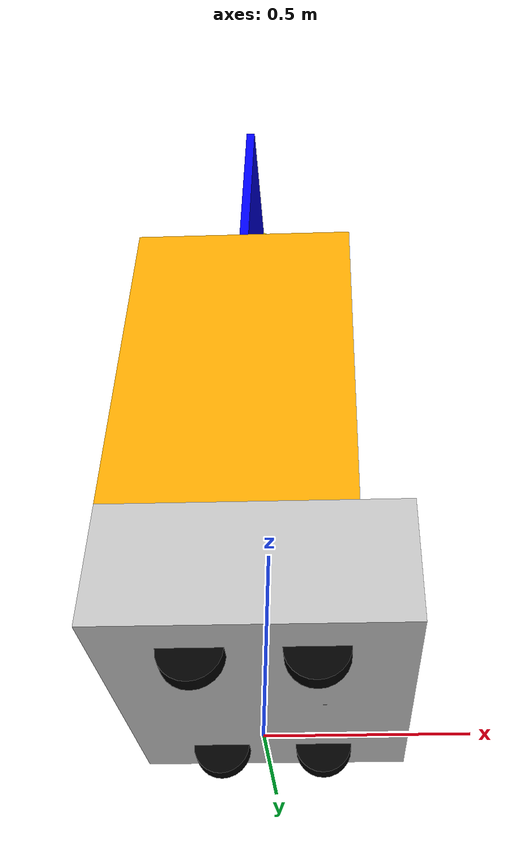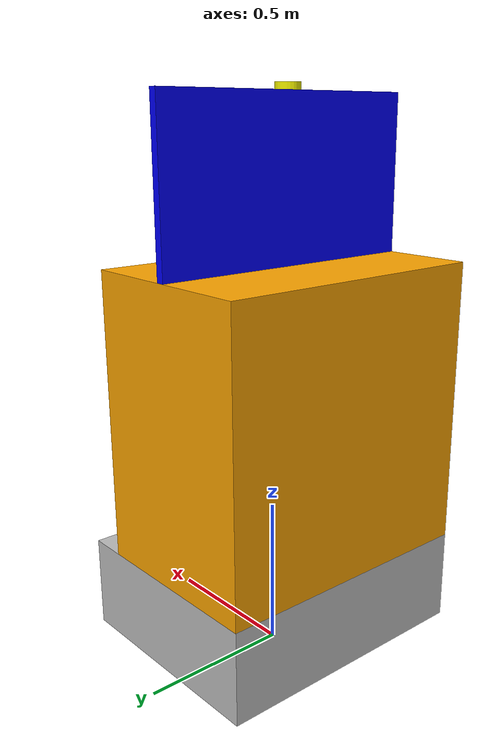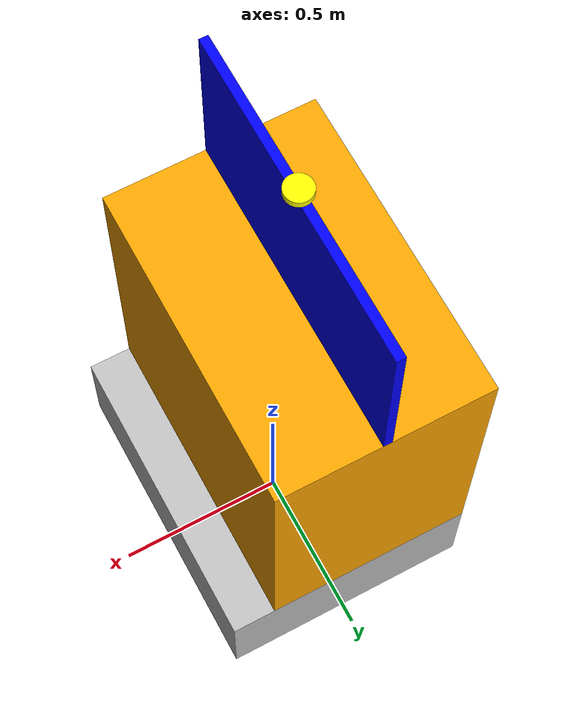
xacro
<?xml version="1.0"?>
<robot xmlns:xacro="http://www.ros.org/wiki/xacro" name="hospitalbot">
    <material name="silver">
        <color rgba="0.75 0.75 0.75 1"/>
    </material>
    <material name="orange">
        <color rgba="1.0 0.65 0.0 1"/>
    </material>
    <material name="blue">
        <color rgba="0 0 1 1"/>
    </material>
    <material name="black">
        <color rgba="0 0 0 1"/>
    </material>
    <material name="green">
        <color rgba="0 1 0 1"/>
    </material>
    <material name="yellow">
        <color rgba="1 1 0 1"/>
    </material>

    <xacro:property name="base_x" value="0.7366"/>
    <xacro:property name="base_y" value="0.9144"/>
    <xacro:property name="base_z" value="0.3048"/>
    <xacro:property name="base_mass" value="0.3"/>

    <xacro:property name="body_x" value="0.6096"/>
    <xacro:property name="body_y" value="0.9144"/>
    <xacro:property name="body_z" value="0.93"/>
    <xacro:property name="body_mass" value="0.3"/>

    <xacro:property name="head_x" value="0.0254"/>
    <xacro:property name="head_y" value="0.9144"/>
    <xacro:property name="head_z" value="0.5"/>
    <xacro:property name="head_mass" value="0.8"/>

    <xacro:property name="imu_x" value="0.03"/>
    <xacro:property name="imu_y" value="0.01"/>
    <xacro:property name="imu_z" value="0.001"/>
    <xacro:property name="imu_mass" value="1e-5"/>

    <xacro:property name="wheel_radius" value="0.0762"/>
    <xacro:property name="wheel_length" value="0.0508"/>
    <xacro:property name="wheel_mass" value="0.125"/>

    <xacro:property name="laser_radius" value="0.038"/>
    <xacro:property name="laser_length" value="0.0205"/>
    <xacro:property name="laser_mass" value="0.34"/>

    <xacro:property name="wheel_offset_x" value="0.14"/>
    <xacro:property name="wheel_offset_y" value="0.32"/>

    <xacro:macro name="box_block" params="name origin_xyz origin_rpy box_x box_y box_z mass='1e-5' color=''">
        <link name="${name}">
            <collision>
                <origin	xyz="${origin_xyz}" rpy="${origin_rpy}"/>
                <geometry>
                    <box size="${box_x} ${box_y} ${box_z}"/>
                </geometry>
            </collision>
            <visual>
                <origin	xyz="${origin_xyz}" rpy="${origin_rpy}"/>
                <geometry>
                    <box size="${box_x} ${box_y} ${box_z}"/>
                </geometry>
                <xacro:if value="${color != ''}">
                    <material name="${color}"/>
                </xacro:if>
            </visual>
            <inertial>
                <mass value="${mass}"/>
                <origin	xyz="${origin_xyz}" rpy="${origin_rpy}"/>
                <inertia ixx="${(float(mass)/12)*(float(box_y)*float(box_y)+float(box_z)*float(box_z))}" ixy="0" ixz="0" iyy="${(float(mass)/12)*(float(box_x)*float(box_x)+float(box_z)*float(box_z))}" iyz="0" izz="${(float(mass)/12)*(float(box_x)*float(box_x)+float(box_y)*float(box_y))}"/>
            </inertial>
        </link>
    </xacro:macro>

    <xacro:macro name="cylinder_block" params="name origin_xyz origin_rpy cylinder_length cylinder_radius mass='1e-5' color=''">
        <link name="${name}">
            <collision>
                <origin	xyz="${origin_xyz}" rpy="${origin_rpy}"/>
                <geometry>
                    <cylinder length="${cylinder_length}" radius="${cylinder_radius}"/>
                </geometry>
            </collision>
            <visual>
                <origin	xyz="${origin_xyz}" rpy="${origin_rpy}"/>
                <geometry>
                    <cylinder length="${cylinder_length}" radius="${cylinder_radius}"/>
                </geometry>
                <xacro:if value="${color != ''}">
                    <material name="${color}"/>
                </xacro:if>
            </visual>
            <inertial>
                <mass value="${mass}"/>
                <origin	xyz="${origin_xyz}" rpy="${origin_rpy}"/>
                <inertia ixx="${(float(mass)/12)*(3*float(cylinder_radius)*float(cylinder_radius)+float(cylinder_length)*float(cylinder_length))}" ixy="0" ixz="0" iyy="${(float(mass)/12)*(3*float(cylinder_radius)*float(cylinder_radius)+float(cylinder_length)*float(cylinder_length))}" iyz="0" izz="${float(mass)*float(cylinder_radius)*float(cylinder_radius)/2}"/>
            </inertial>
        </link>
    </xacro:macro>

    <xacro:macro name="fixed_joint_block" params="name parent child origin_xyz origin_rpy">
        <joint name="${name}" type="fixed">
            <parent link="${parent}"/>
            <child link="${child}"/>
            <origin rpy="${origin_rpy}" xyz="${origin_xyz}"/>
        </joint>
    </xacro:macro>

    <xacro:macro name="continuous_joint_block" params="name parent child origin_xyz origin_rpy axis_xyz">
        <joint name="${name}" type="continuous">
            <axis xyz="${axis_xyz}"/>
            <parent link="${parent}"/>
            <child link="${child}"/>
            <origin rpy="${origin_rpy}" xyz="${origin_xyz}"/>
        </joint>
    </xacro:macro>

    <xacro:box_block name="base_footprint" origin_xyz="0.0 0.0 0.0" origin_rpy="0.0 0.0 0.0" box_x="0.0001" box_y="0.0001" box_z="0.0001"/>
    <xacro:box_block name="base_link" origin_xyz="0.0 0.0 0.0" origin_rpy="0.0 0.0 0.0" box_x="${base_x}" box_y="${base_y}" box_z="${base_z}" mass="${base_mass}" color="silver"/>
    <xacro:box_block name="body_link" origin_xyz="0.0 0.0 0.465" origin_rpy="0.0 0.0 0.0" box_x="${body_x}" box_y="${body_y}" box_z="${body_z}" mass="${body_mass}" color="orange"/>
    <xacro:box_block name="imu" origin_xyz="0.0 0.0 0.0005" origin_rpy="0.0 0.0 0.0" box_x="${imu_x}" box_y="${imu_y}" box_z="${imu_z}" mass="${imu_mass}" color="black"/>
    <xacro:box_block name="head_link" origin_xyz="0.0 0.0 0.25" origin_rpy="0.0 0.0 0.0" box_x="${head_x}" box_y="${head_y}" box_z="${head_z}" mass="${head_mass}" color="blue"/>
    <link name="proximity_front_middle_link"/>
    <link name="proximity_front_left_one_link"/>
    <link name="proximity_front_left_two_link"/>
    <link name="proximity_front_left_three_link"/>
    <link name="proximity_front_left_four_link"/>
    <link name="proximity_front_right_one_link"/>
    <link name="proximity_front_right_two_link"/>
    <link name="proximity_front_right_three_link"/>
    <link name="proximity_front_right_four_link"/>
    <link name="proximity_rear_middle_link"/>
    <xacro:cylinder_block name="laser" origin_xyz="0.0 0.0 0.01025" origin_rpy="0.0 0.0 0.0" cylinder_length="${laser_length}" cylinder_radius="${laser_radius}" mass="${laser_mass}" color="yellow"/>
    <xacro:cylinder_block name="right_front_wheel" origin_xyz="0.0 0.0 0.0" origin_rpy="0.0 0.0 0.0" cylinder_length="${wheel_length}" cylinder_radius="${wheel_radius}" mass="${wheel_mass}" color="black"/>
    <xacro:cylinder_block name="right_rear_wheel" origin_xyz="0.0 0.0 0.0" origin_rpy="0.0 0.0 0.0" cylinder_length="${wheel_length}" cylinder_radius="${wheel_radius}" mass="${wheel_mass}" color="black"/>
    <xacro:cylinder_block name="left_front_wheel" origin_xyz="0.0 0.0 0.0" origin_rpy="0.0 0.0 0.0" cylinder_length="${wheel_length}" cylinder_radius="${wheel_radius}" mass="${wheel_mass}" color="black"/>
    <xacro:cylinder_block name="left_rear_wheel" origin_xyz="0.0 0.0 0.0" origin_rpy="0.0 0.0 0.0" cylinder_length="${wheel_length}" cylinder_radius="${wheel_radius}" mass="${wheel_mass}" color="black"/>

    <xacro:fixed_joint_block name="footprint_base_joint" parent="base_footprint" child="base_link" origin_xyz="0.0 0.0 ${wheel_radius+(base_z/2)}" origin_rpy="0.0 0.0 0.0"/>
    <xacro:fixed_joint_block name="base_imu_joint" parent="base_link" child="imu" origin_xyz="${base_x/2-0.2286} 0.0 ${-base_z/2}" origin_rpy="0.0 0.0 0.0"/>
    <xacro:fixed_joint_block name="base_body_joint" parent="base_link" child="body_link" origin_xyz="${-(base_x-body_x)/2} 0.0 ${base_z/2}" origin_rpy="0.0 0.0 0.0"/>
    <xacro:fixed_joint_block name="body_head_joint" parent="body_link" child="head_link" origin_xyz="0.0 0.0 ${body_z}" origin_rpy="0.0 0.0 0.0"/>
    <xacro:fixed_joint_block name="head_laser_joint" parent="head_link" child="laser" origin_xyz="0.0 0.0 ${head_z}" origin_rpy="0.0 0.0 3.14159"/>

    <xacro:fixed_joint_block name="base_proximity_front_left_four_joint" parent="base_link" child="proximity_front_left_four_link" origin_xyz="${body_x/2+0.09-(base_x-body_x)/2} 0.42 0.0" origin_rpy="0.0 0.0 1.0"/>
    <xacro:fixed_joint_block name="base_proximity_front_left_three_joint" parent="base_link" child="proximity_front_left_three_link" origin_xyz="${body_x/2+0.05-(base_x-body_x)/2} 0.30 0.0" origin_rpy="0.0 0.0 0.0"/>
    <xacro:fixed_joint_block name="base_proximity_front_left_two_joint" parent="base_link" child="proximity_front_left_two_link" origin_xyz="${body_x/2+0.025-(base_x-body_x)/2} 0.20 0.0" origin_rpy="0.0 0.0 0.0"/>
    <xacro:fixed_joint_block name="base_proximity_front_left_one_joint" parent="base_link" child="proximity_front_left_one_link" origin_xyz="${body_x/2+0.02-(base_x-body_x)/2} 0.10 0.0" origin_rpy="0.0 0.0 0.0"/>
    <xacro:fixed_joint_block name="base_proximity_front_middle_joint" parent="base_link" child="proximity_front_middle_link" origin_xyz="${body_x/2-(base_x-body_x)/2} 0.0 0.0" origin_rpy="0.0 0.0 0.0"/>
    <xacro:fixed_joint_block name="base_proximity_front_right_one_joint" parent="base_link" child="proximity_front_right_one_link" origin_xyz="${body_x/2+0.02-(base_x-body_x)/2} -0.10 0.0" origin_rpy="0.0 0.0 0.0"/>
    <xacro:fixed_joint_block name="base_proximity_front_right_two_joint" parent="base_link" child="proximity_front_right_two_link" origin_xyz="${body_x/2+0.025-(base_x-body_x)/2} -0.20 0.0" origin_rpy="0.0 0.0 0.0"/>
    <xacro:fixed_joint_block name="base_proximity_front_right_three_joint" parent="base_link" child="proximity_front_right_three_link" origin_xyz="${body_x/2+0.05-(base_x-body_x)/2} -0.30 0.0" origin_rpy="0.0 0.0 0.0"/>
    <xacro:fixed_joint_block name="base_proximity_front_right_four_joint" parent="base_link" child="proximity_front_right_four_link" origin_xyz="${body_x/2+0.09-(base_x-body_x)/2} -0.42 0.0" origin_rpy="0.0 0.0 -1.0"/>
    <xacro:fixed_joint_block name="base_proximity_rear_middle_joint" parent="base_link" child="proximity_rear_middle_link" origin_xyz="${-body_x/2-(base_x-body_x)/2} 0.0 0.0" origin_rpy="0.0 0.0 3.141592654"/>

    <xacro:continuous_joint_block name="right_front_wheel_joint" parent="base_link" child="right_front_wheel" origin_xyz="${wheel_offset_x} ${-wheel_offset_y} ${-base_z/2}" origin_rpy="-1.5708 0 0" axis_xyz="0 0 1"/>
    <xacro:continuous_joint_block name="right_rear_wheel_joint" parent="base_link" child="right_rear_wheel" origin_xyz="${-wheel_offset_x} ${-wheel_offset_y} ${-base_z/2}" origin_rpy="-1.5708 0 0" axis_xyz="0 0 1"/>
    <xacro:continuous_joint_block name="left_front_wheel_joint" parent="base_link" child="left_front_wheel" origin_xyz="${wheel_offset_x} ${wheel_offset_y} ${-base_z/2}" origin_rpy="-1.5708 0 0" axis_xyz="0 0 1"/>
    <xacro:continuous_joint_block name="left_rear_wheel_joint" parent="base_link" child="left_rear_wheel" origin_xyz="${-wheel_offset_x} ${wheel_offset_y} ${-base_z/2}" origin_rpy="-1.5708 0 0" axis_xyz="0 0 1"/>
</robot>
